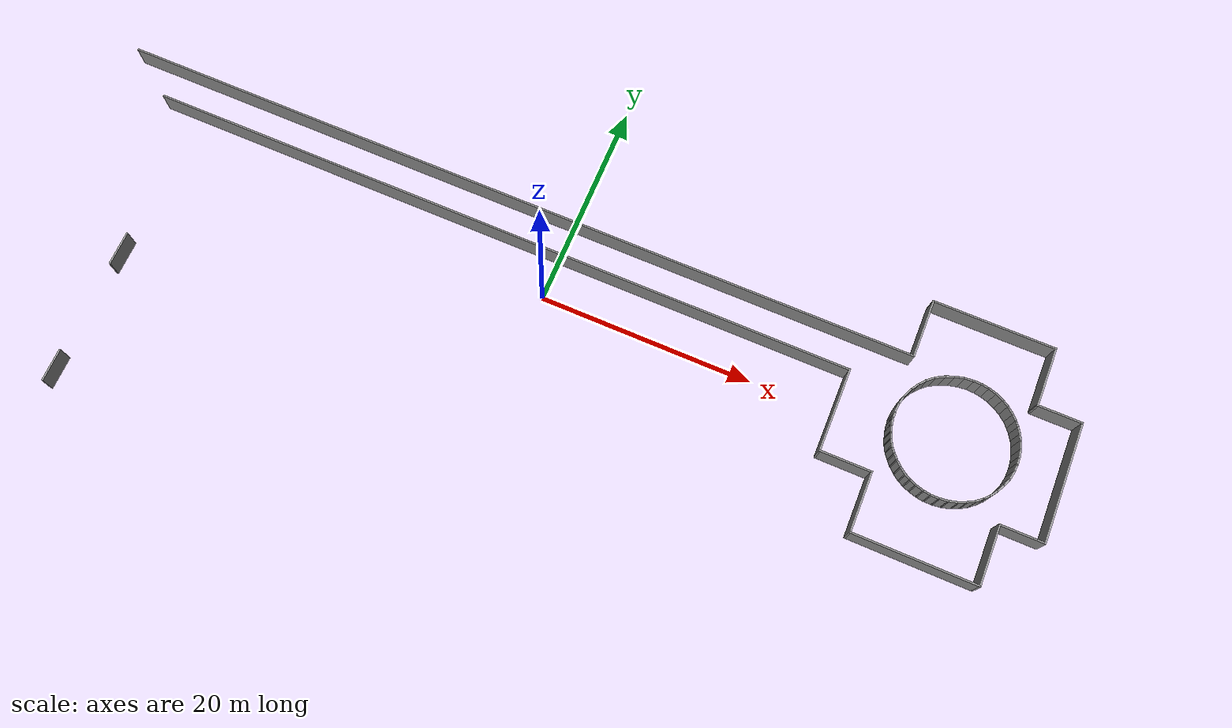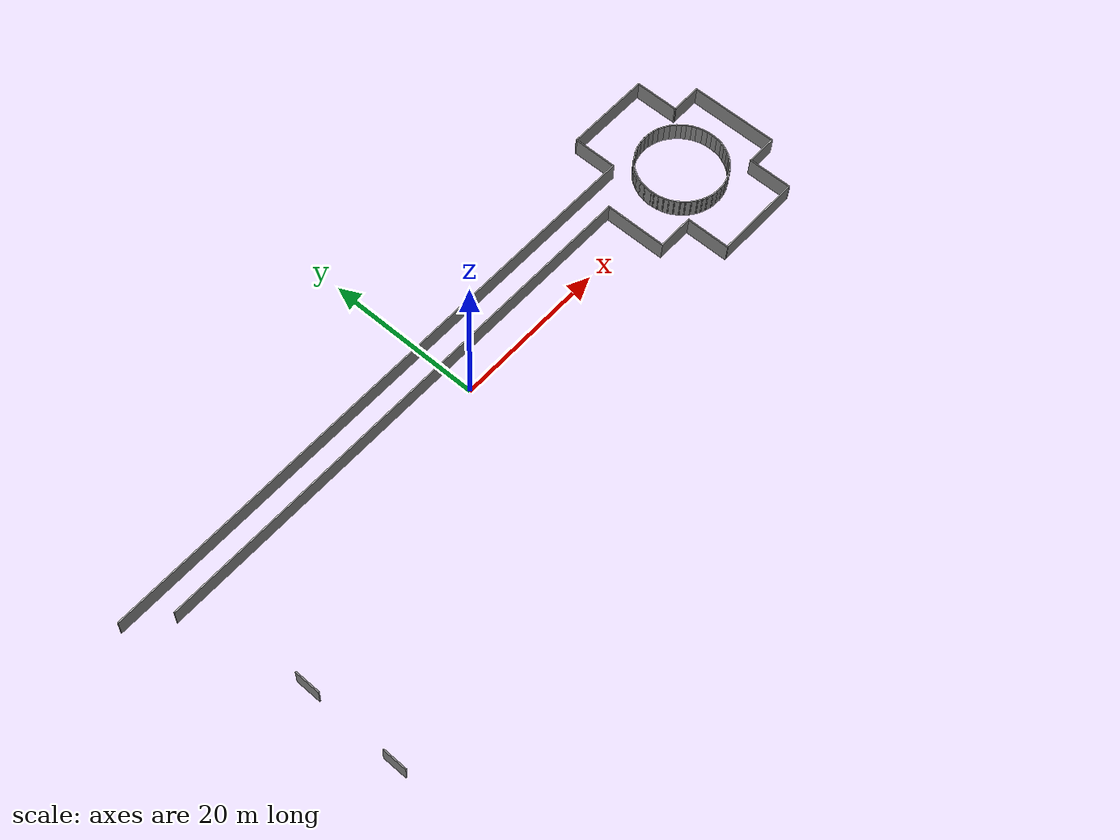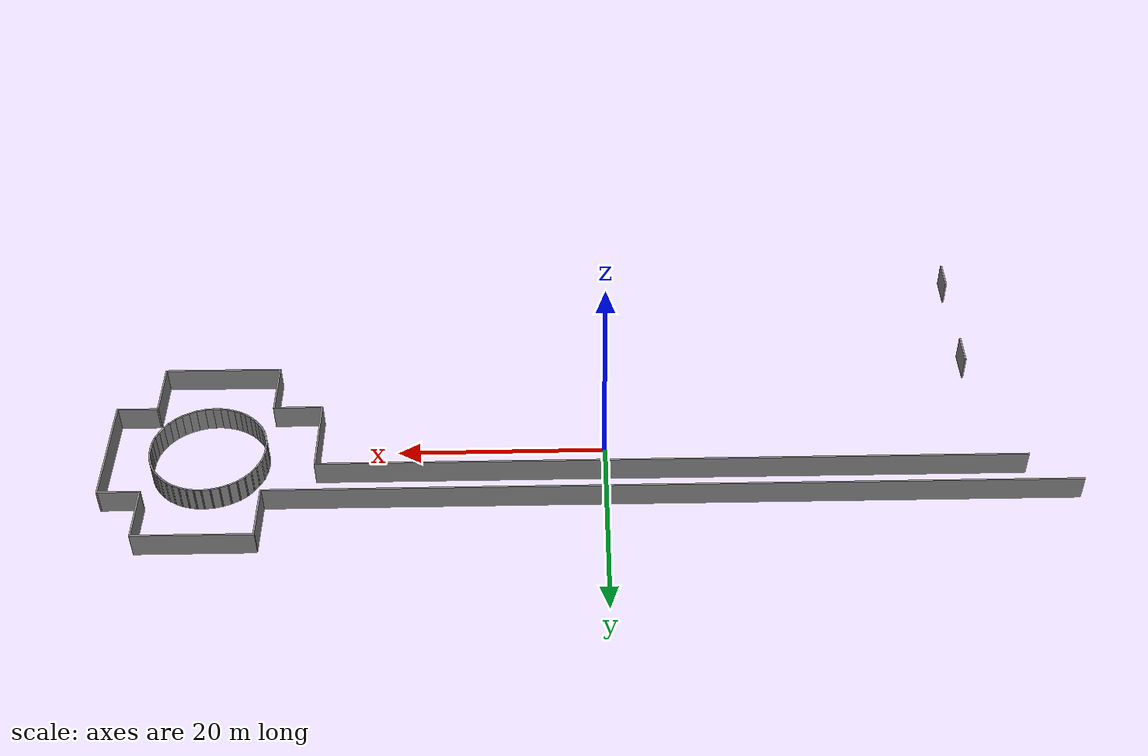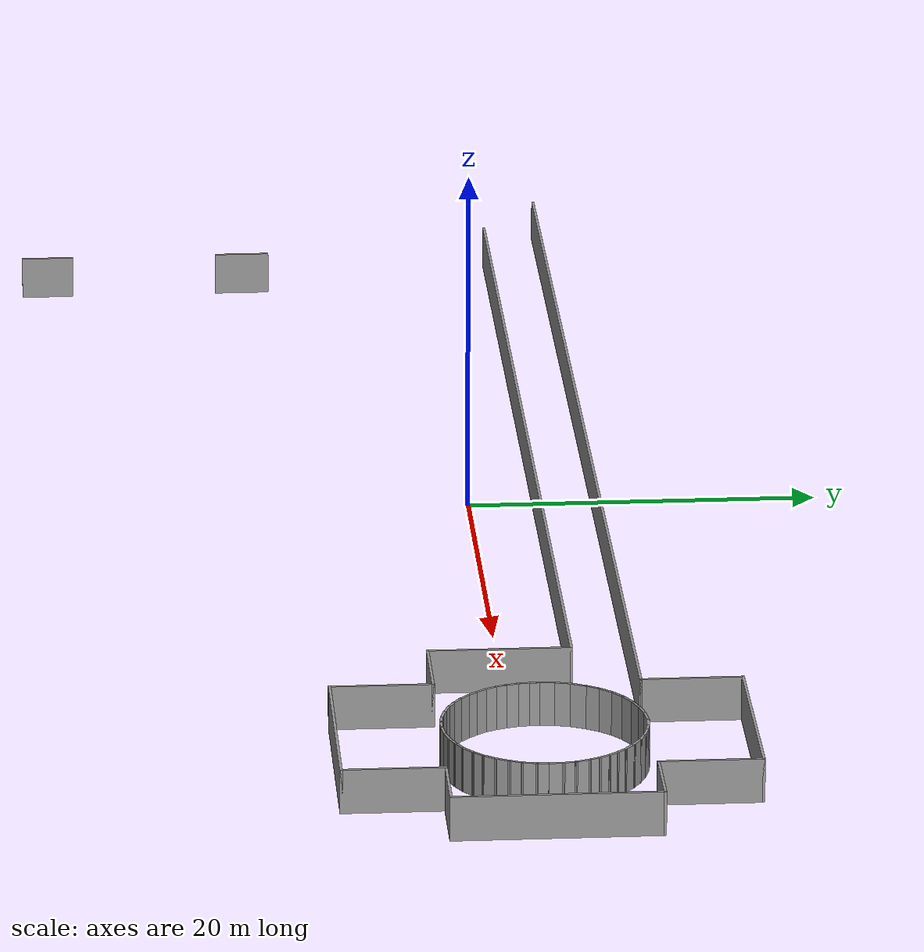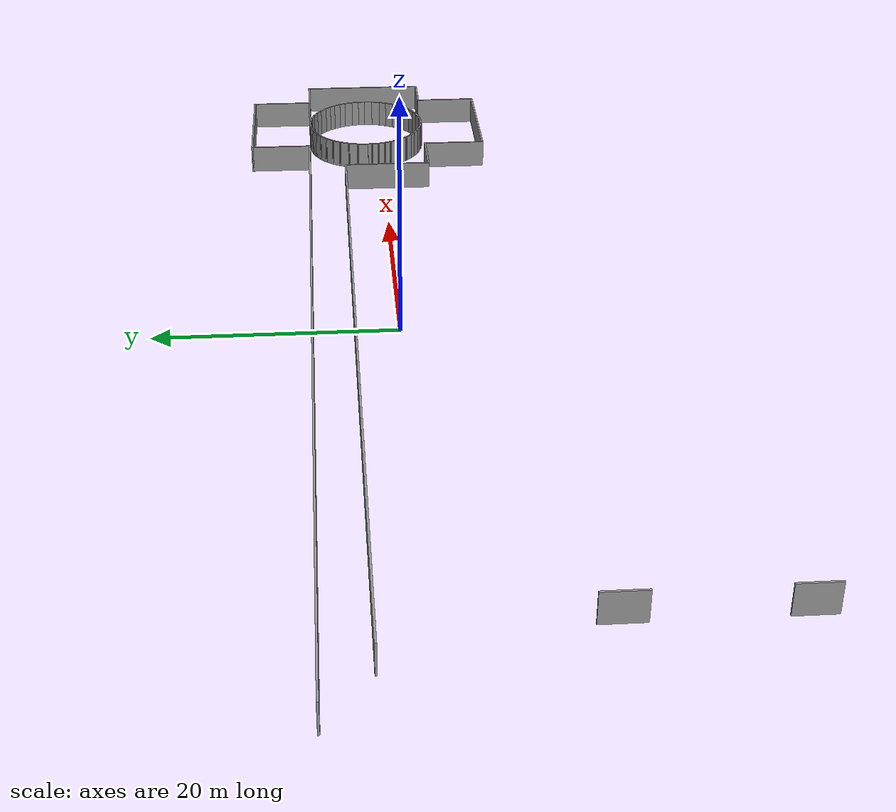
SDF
<sdf version="1.7">
 <model name="TD1_large">
  <pose>-31.5443 -9.14138 0 0 -0 0</pose>
  <link name="Wall_171">
   <collision name="Wall_171_Collision">
    <geometry><box><size>68.1 0.15 2.5</size></box></geometry>
    <pose>0 0 1.25 0 -0 0</pose>
   </collision>
   <visual name="Wall_171_Visual">
    <pose>0 0 1.25 0 -0 0</pose>
    <geometry><box><size>68.1 0.15 2.5</size></box></geometry>
    <material>
     <script><uri>file://media/materials/scripts/gazebo.material</uri><name>Gazebo/Grey</name></script>
     <ambient>1 1 1 1</ambient>
    </material>
    <meta><layer>0</layer></meta>
   </visual>
   <pose>25.1877 12.8583 0 0 -0 0</pose>
  </link>
  <link name="Wall_173">
   <collision name="Wall_173_Collision">
    <geometry><box><size>8 0.15 2.5</size></box></geometry>
    <pose>0 0 1.25 0 -0 0</pose>
   </collision>
   <visual name="Wall_173_Visual">
    <pose>0 0 1.25 0 -0 0</pose>
    <geometry><box><size>8 0.15 2.5</size></box></geometry>
    <material>
     <script><uri>file://media/materials/scripts/gazebo.material</uri><name>Gazebo/Grey</name></script>
     <ambient>1 1 1 1</ambient>
    </material>
    <meta><layer>0</layer></meta>
   </visual>
   <pose>59.1627 8.93327 0 0 -0 -1.5708</pose>
  </link>
  <link name="Wall_174">
   <collision name="Wall_174_Collision">
    <geometry><box><size>4.85 0.15 2.5</size></box></geometry>
    <pose>0 0 1.25 0 -0 0</pose>
   </collision>
   <visual name="Wall_174_Visual">
    <pose>0 0 1.25 0 -0 0</pose>
    <geometry><box><size>4.85 0.15 2.5</size></box></geometry>
    <material>
     <script><uri>file://media/materials/scripts/gazebo.material</uri><name>Gazebo/Grey</name></script>
     <ambient>1 1 1 1</ambient>
    </material>
    <meta><layer>0</layer></meta>
   </visual>
   <pose>61.5127 5.00827 0 0 -0 0</pose>
  </link>
  <link name="Wall_179">
   <collision name="Wall_179_Collision">
    <geometry><box><size>5.75 0.15 2.5</size></box></geometry>
    <pose>0 0 1.25 0 -0 0</pose>
   </collision>
   <visual name="Wall_179_Visual">
    <pose>0 0 1.25 0 -0 0</pose>
    <geometry><box><size>5.75 0.15 2.5</size></box></geometry>
    <material>
     <script><uri>file://media/materials/scripts/gazebo.material</uri><name>Gazebo/Grey</name></script>
     <ambient>1 1 1 1</ambient>
    </material>
    <meta><layer>0</layer></meta>
   </visual>
   <pose>63.8627 2.20827 0 0 -0 -1.5708</pose>
  </link>
  <link name="Wall_180">
   <collision name="Wall_180_Collision">
    <geometry><box><size>11.5 0.15 2.5</size></box></geometry>
    <pose>0 0 1.25 0 -0 0</pose>
   </collision>
   <visual name="Wall_180_Visual">
    <pose>0 0 1.25 0 -0 0</pose>
    <geometry><box><size>11.5 0.15 2.5</size></box></geometry>
    <material>
     <script><uri>file://media/materials/scripts/gazebo.material</uri><name>Gazebo/Grey</name></script>
     <ambient>1 1 1 1</ambient>
    </material>
    <meta><layer>0</layer></meta>
   </visual>
   <pose>69.5377 -0.591726 0 0 -0 0</pose>
  </link>
  <link name="Wall_181">
   <collision name="Wall_181_Collision">
    <geometry><box><size>5.7 0.15 2.5</size></box></geometry>
    <pose>0 0 1.25 0 -0 0</pose>
   </collision>
   <visual name="Wall_181_Visual">
    <pose>0 0 1.25 0 -0 0</pose>
    <geometry><box><size>5.7 0.15 2.5</size></box></geometry>
    <material>
     <script><uri>file://media/materials/scripts/gazebo.material</uri><name>Gazebo/Grey</name></script>
     <ambient>1 1 1 1</ambient>
    </material>
    <meta><layer>0</layer></meta>
   </visual>
   <pose>75.2127 2.18327 0 0 -0 1.5708</pose>
  </link>
  <link name="Wall_183">
   <collision name="Wall_183_Collision">
    <geometry><box><size>4.1 0.15 2.5</size></box></geometry>
    <pose>0 0 1.25 0 -0 0</pose>
   </collision>
   <visual name="Wall_183_Visual">
    <pose>0 0 1.25 0 -0 0</pose>
    <geometry><box><size>4.1 0.15 2.5</size></box></geometry>
    <material>
     <script><uri>file://media/materials/scripts/gazebo.material</uri><name>Gazebo/Grey</name></script>
     <ambient>1 1 1 1</ambient>
    </material>
    <meta><layer>0</layer></meta>
   </visual>
   <pose>77.1877 4.95827 0 0 -0 0</pose>
  </link>
  <link name="Wall_185">
   <collision name="Wall_185_Collision">
    <geometry><box><size>11.4 0.15 2.5</size></box></geometry>
    <pose>0 0 1.25 0 -0 0</pose>
   </collision>
   <visual name="Wall_185_Visual">
    <pose>0 0 1.25 0 -0 0</pose>
    <geometry><box><size>11.4 0.15 2.5</size></box></geometry>
    <material>
     <script><uri>file://media/materials/scripts/gazebo.material</uri><name>Gazebo/Grey</name></script>
     <ambient>1 1 1 1</ambient>
    </material>
    <meta><layer>0</layer></meta>
   </visual>
   <pose>79.1627 10.5833 0 0 -0 1.5708</pose>
  </link>
  <link name="Wall_188">
   <collision name="Wall_188_Collision">
    <geometry><box><size>4.15 0.15 2.5</size></box></geometry>
    <pose>0 0 1.25 0 -0 0</pose>
   </collision>
   <visual name="Wall_188_Visual">
    <pose>0 0 1.25 0 -0 0</pose>
    <geometry><box><size>4.15 0.15 2.5</size></box></geometry>
    <material>
     <script><uri>file://media/materials/scripts/gazebo.material</uri><name>Gazebo/Grey</name></script>
     <ambient>1 1 1 1</ambient>
    </material>
    <meta><layer>0</layer></meta>
   </visual>
   <pose>77.1627 16.2083 0 0 -0 3.14159</pose>
  </link>
  <link name="Wall_190">
   <collision name="Wall_190_Collision">
    <geometry><box><size>5.7367 0.15 2.5</size></box></geometry>
    <pose>0 0 1.25 0 -0 0</pose>
   </collision>
   <visual name="Wall_190_Visual">
    <pose>0 0 1.25 0 -0 0</pose>
    <geometry><box><size>5.7367 0.15 2.5</size></box></geometry>
    <material>
     <script><uri>file://media/materials/scripts/gazebo.material</uri><name>Gazebo/Grey</name></script>
     <ambient>1 1 1 1</ambient>
    </material>
    <meta><layer>0</layer></meta>
   </visual>
   <pose>75.1627 19.0016 0 0 -0 1.5708</pose>
  </link>
  <link name="Wall_192">
   <collision name="Wall_192_Collision">
    <geometry><box><size>11.4 0.15 2.5</size></box></geometry>
    <pose>0 0 1.25 0 -0 0</pose>
   </collision>
   <visual name="Wall_192_Visual">
    <pose>0 0 1.25 0 -0 0</pose>
    <geometry><box><size>11.4 0.15 2.5</size></box></geometry>
    <material>
     <script><uri>file://media/materials/scripts/gazebo.material</uri><name>Gazebo/Grey</name></script>
     <ambient>1 1 1 1</ambient>
    </material>
    <meta><layer>0</layer></meta>
   </visual>
   <pose>69.5377 21.795 0 0 -0 3.14159</pose>
  </link>
  <link name="Wall_195">
   <collision name="Wall_195_Collision">
    <geometry><box><size>5.7 0.15 2.5</size></box></geometry>
    <pose>0 0 1.25 0 -0 0</pose>
   </collision>
   <visual name="Wall_195_Visual">
    <pose>0 0 1.25 0 -0 0</pose>
    <geometry><box><size>5.7 0.15 2.5</size></box></geometry>
    <material>
     <script><uri>file://media/materials/scripts/gazebo.material</uri><name>Gazebo/Grey</name></script>
     <ambient>1 1 1 1</ambient>
    </material>
    <meta><layer>0</layer></meta>
   </visual>
   <pose>63.9127 19.02 0 0 -0 -1.5708</pose>
  </link>
  <link name="Wall_197">
   <collision name="Wall_197_Collision">
    <geometry><box><size>77.45 0.15 2.5</size></box></geometry>
    <pose>0 0 1.25 0 -0 0</pose>
   </collision>
   <visual name="Wall_197_Visual">
    <pose>0 0 1.25 0 -0 0</pose>
    <geometry><box><size>77.45 0.15 2.5</size></box></geometry>
    <material>
     <script><uri>file://media/materials/scripts/gazebo.material</uri><name>Gazebo/Grey</name></script>
     <ambient>1 1 1 1</ambient>
    </material>
    <meta><layer>0</layer></meta>
   </visual>
   <pose>25.2627 16.245 0 0 -0 3.14159</pose>
  </link>
  <link name="Wall_23">
   <collision name="Wall_23_Collision">
    <geometry><box><size>3.1 0.15 2.5</size></box></geometry>
    <pose>0 0 1.25 0 -0 0</pose>
   </collision>
   <visual name="Wall_23_Visual">
    <pose>0 0 1.25 0 -0 0</pose>
    <geometry><box><size>3.1 0.15 2.5</size></box></geometry>
    <material>
     <script><uri>file://media/materials/scripts/gazebo.material</uri><name>Gazebo/Grey</name></script>
     <ambient>1 1 1 1</ambient>
    </material>
    <meta><layer>0</layer></meta>
   </visual>
   <pose>-5.11964 -14.2537 0 0 -0 1.5708</pose>
  </link>
  <link name="Wall_280">
   <collision name="Wall_280_Collision">
    <geometry><box><size>1.08565 0.15 2.5</size></box></geometry>
    <pose>0 0 1.25 0 -0 0</pose>
   </collision>
   <visual name="Wall_280_Visual">
    <pose>0 0 1.25 0 -0 0</pose>
    <geometry><box><size>1.08565 0.15 2.5</size></box></geometry>
    <material>
     <script><uri>file://media/materials/scripts/gazebo.material</uri><name>Gazebo/Grey</name></script>
     <ambient>1 1 1 1</ambient>
    </material>
    <meta><layer>0</layer></meta>
   </visual>
   <pose>64.0308 11.105 0 0 -0 1.47113</pose>
  </link>
  <link name="Wall_281">
   <collision name="Wall_281_Collision">
    <geometry><box><size>1.01133 0.15 2.5</size></box></geometry>
    <pose>0 0 1.25 0 -0 0</pose>
   </collision>
   <visual name="Wall_281_Visual">
    <pose>0 0 1.25 0 -0 0</pose>
    <geometry><box><size>1.01133 0.15 2.5</size></box></geometry>
    <material>
     <script><uri>file://media/materials/scripts/gazebo.material</uri><name>Gazebo/Grey</name></script>
     <ambient>1 1 1 1</ambient>
    </material>
    <meta><layer>0</layer></meta>
   </visual>
   <pose>64.1771 11.9894 0 0 -0 1.33705</pose>
  </link>
  <link name="Wall_282">
   <collision name="Wall_282_Collision">
    <geometry><box><size>1.08451 0.15 2.5</size></box></geometry>
    <pose>0 0 1.25 0 -0 0</pose>
   </collision>
   <visual name="Wall_282_Visual">
    <pose>0 0 1.25 0 -0 0</pose>
    <geometry><box><size>1.08451 0.15 2.5</size></box></geometry>
    <material>
     <script><uri>file://media/materials/scripts/gazebo.material</uri><name>Gazebo/Grey</name></script>
     <ambient>1 1 1 1</ambient>
    </material>
    <meta><layer>0</layer></meta>
   </visual>
   <pose>64.4697 12.834 0 0 -0 1.14535</pose>
  </link>
  <link name="Wall_283">
   <collision name="Wall_283_Collision">
    <geometry><box><size>0.943783 0.15 2.5</size></box></geometry>
    <pose>0 0 1.25 0 -0 0</pose>
   </collision>
   <visual name="Wall_283_Visual">
    <pose>0 0 1.25 0 -0 0</pose>
    <geometry><box><size>0.943783 0.15 2.5</size></box></geometry>
    <material>
     <script><uri>file://media/materials/scripts/gazebo.material</uri><name>Gazebo/Grey</name></script>
     <ambient>1 1 1 1</ambient>
    </material>
    <meta><layer>0</layer></meta>
   </visual>
   <pose>64.8687 13.5987 0 0 -0 1.02463</pose>
  </link>
  <link name="Wall_284">
   <collision name="Wall_284_Collision">
    <geometry><box><size>0.970844 0.15 2.5</size></box></geometry>
    <pose>0 0 1.25 0 -0 0</pose>
   </collision>
   <visual name="Wall_284_Visual">
    <pose>0 0 1.25 0 -0 0</pose>
    <geometry><box><size>0.970844 0.15 2.5</size></box></geometry>
    <material>
     <script><uri>file://media/materials/scripts/gazebo.material</uri><name>Gazebo/Grey</name></script>
     <ambient>1 1 1 1</ambient>
    </material>
    <meta><layer>0</layer></meta>
   </visual>
   <pose>65.3409 14.2504 0 0 -0 0.865685</pose>
  </link>
  <link name="Wall_285">
   <collision name="Wall_285_Collision">
    <geometry><box><size>0.981017 0.15 2.5</size></box></geometry>
    <pose>0 0 1.25 0 -0 0</pose>
   </collision>
   <visual name="Wall_285_Visual">
    <pose>0 0 1.25 0 -0 0</pose>
    <geometry><box><size>0.981017 0.15 2.5</size></box></geometry>
    <material>
     <script><uri>file://media/materials/scripts/gazebo.material</uri><name>Gazebo/Grey</name></script>
     <ambient>1 1 1 1</ambient>
    </material>
    <meta><layer>0</layer></meta>
   </visual>
   <pose>65.9261 14.829 0 0 -0 0.694738</pose>
  </link>
  <link name="Wall_286">
   <collision name="Wall_286_Collision">
    <geometry><box><size>1.02599 0.15 2.5</size></box></geometry>
    <pose>0 0 1.25 0 -0 0</pose>
   </collision>
   <visual name="Wall_286_Visual">
    <pose>0 0 1.25 0 -0 0</pose>
    <geometry><box><size>1.02599 0.15 2.5</size></box></geometry>
    <material>
     <script><uri>file://media/materials/scripts/gazebo.material</uri><name>Gazebo/Grey</name></script>
     <ambient>1 1 1 1</ambient>
    </material>
    <meta><layer>0</layer></meta>
   </visual>
   <pose>66.6243 15.3144 0 0 -0 0.524796</pose>
  </link>
  <link name="Wall_287">
   <collision name="Wall_287_Collision">
    <geometry><box><size>0.997144 0.15 2.5</size></box></geometry>
    <pose>0 0 1.25 0 -0 0</pose>
   </collision>
   <visual name="Wall_287_Visual">
    <pose>0 0 1.25 0 -0 0</pose>
    <geometry><box><size>0.997144 0.15 2.5</size></box></geometry>
    <material>
     <script><uri>file://media/materials/scripts/gazebo.material</uri><name>Gazebo/Grey</name></script>
     <ambient>1 1 1 1</ambient>
    </material>
    <meta><layer>0</layer></meta>
   </visual>
   <pose>67.3957 15.6935 0 0 -0 0.386337</pose>
  </link>
  <link name="Wall_288">
   <collision name="Wall_288_Collision">
    <geometry><box><size>0.998396 0.15 2.5</size></box></geometry>
    <pose>0 0 1.25 0 -0 0</pose>
   </collision>
   <visual name="Wall_288_Visual">
    <pose>0 0 1.25 0 -0 0</pose>
    <geometry><box><size>0.998396 0.15 2.5</size></box></geometry>
    <material>
     <script><uri>file://media/materials/scripts/gazebo.material</uri><name>Gazebo/Grey</name></script>
     <ambient>1 1 1 1</ambient>
    </material>
    <meta><layer>0</layer></meta>
   </visual>
   <pose>68.2004 15.9529 0 0 -0 0.237374</pose>
  </link>
  <link name="Wall_289">
   <collision name="Wall_289_Collision">
    <geometry><box><size>0.993063 0.15 2.5</size></box></geometry>
    <pose>0 0 1.25 0 -0 0</pose>
   </collision>
   <visual name="Wall_289_Visual">
    <pose>0 0 1.25 0 -0 0</pose>
    <geometry><box><size>0.993063 0.15 2.5</size></box></geometry>
    <material>
     <script><uri>file://media/materials/scripts/gazebo.material</uri><name>Gazebo/Grey</name></script>
     <ambient>1 1 1 1</ambient>
    </material>
    <meta><layer>0</layer></meta>
   </visual>
   <pose>69.0316 16.0992 0 0 -0 0.110657</pose>
  </link>
  <link name="Wall_290">
   <collision name="Wall_290_Collision">
    <geometry><box><size>0.841733 0.15 2.5</size></box></geometry>
    <pose>0 0 1.25 0 -0 0</pose>
   </collision>
   <visual name="Wall_290_Visual">
    <pose>0 0 1.25 0 -0 0</pose>
    <geometry><box><size>0.841733 0.15 2.5</size></box></geometry>
    <material>
     <script><uri>file://media/materials/scripts/gazebo.material</uri><name>Gazebo/Grey</name></script>
     <ambient>1 1 1 1</ambient>
    </material>
    <meta><layer>0</layer></meta>
   </visual>
   <pose>69.7964 16.1324 0 0 -0 -0.038443</pose>
  </link>
  <link name="Wall_291">
   <collision name="Wall_291_Collision">
    <geometry><box><size>0.864996 0.15 2.5</size></box></geometry>
    <pose>0 0 1.25 0 -0 0</pose>
   </collision>
   <visual name="Wall_291_Visual">
    <pose>0 0 1.25 0 -0 0</pose>
    <geometry><box><size>0.864996 0.15 2.5</size></box></geometry>
    <material>
     <script><uri>file://media/materials/scripts/gazebo.material</uri><name>Gazebo/Grey</name></script>
     <ambient>1 1 1 1</ambient>
    </material>
    <meta><layer>0</layer></meta>
   </visual>
   <pose>70.4946 16.0593 0 0 -0 -0.168207</pose>
  </link>
  <link name="Wall_292">
   <collision name="Wall_292_Collision">
    <geometry><box><size>0.886326 0.15 2.5</size></box></geometry>
    <pose>0 0 1.25 0 -0 0</pose>
   </collision>
   <visual name="Wall_292_Visual">
    <pose>0 0 1.25 0 -0 0</pose>
    <geometry><box><size>0.886326 0.15 2.5</size></box></geometry>
    <material>
     <script><uri>file://media/materials/scripts/gazebo.material</uri><name>Gazebo/Grey</name></script>
     <ambient>1 1 1 1</ambient>
    </material>
    <meta><layer>0</layer></meta>
   </visual>
   <pose>71.1995 15.893 0 0 -0 -0.293187</pose>
  </link>
  <link name="Wall_293">
   <collision name="Wall_293_Collision">
    <geometry><box><size>0.899659 0.15 2.5</size></box></geometry>
    <pose>0 0 1.25 0 -0 0</pose>
   </collision>
   <visual name="Wall_293_Visual">
    <pose>0 0 1.25 0 -0 0</pose>
    <geometry><box><size>0.899659 0.15 2.5</size></box></geometry>
    <material>
     <script><uri>file://media/materials/scripts/gazebo.material</uri><name>Gazebo/Grey</name></script>
     <ambient>1 1 1 1</ambient>
    </material>
    <meta><layer>0</layer></meta>
   </visual>
   <pose>71.8912 15.627 0 0 -0 -0.439843</pose>
  </link>
  <link name="Wall_294">
   <collision name="Wall_294_Collision">
    <geometry><box><size>0.862021 0.15 2.5</size></box></geometry>
    <pose>0 0 1.25 0 -0 0</pose>
   </collision>
   <visual name="Wall_294_Visual">
    <pose>0 0 1.25 0 -0 0</pose>
    <geometry><box><size>0.862021 0.15 2.5</size></box></geometry>
    <material>
     <script><uri>file://media/materials/scripts/gazebo.material</uri><name>Gazebo/Grey</name></script>
     <ambient>1 1 1 1</ambient>
    </material>
    <meta><layer>0</layer></meta>
   </visual>
   <pose>72.5296 15.2745 0 0 -0 -0.57246</pose>
  </link>
  <link name="Wall_295">
   <collision name="Wall_295_Collision">
    <geometry><box><size>0.933352 0.15 2.5</size></box></geometry>
    <pose>0 0 1.25 0 -0 0</pose>
   </collision>
   <visual name="Wall_295_Visual">
    <pose>0 0 1.25 0 -0 0</pose>
    <geometry><box><size>0.933352 0.15 2.5</size></box></geometry>
    <material>
     <script><uri>file://media/materials/scripts/gazebo.material</uri><name>Gazebo/Grey</name></script>
     <ambient>1 1 1 1</ambient>
    </material>
    <meta><layer>0</layer></meta>
   </visual>
   <pose>73.1281 14.829 0 0 -0 -0.70126</pose>
  </link>
  <link name="Wall_296">
   <collision name="Wall_296_Collision">
    <geometry><box><size>0.753068 0.15 2.5</size></box></geometry>
    <pose>0 0 1.25 0 -0 0</pose>
   </collision>
   <visual name="Wall_296_Visual">
    <pose>0 0 1.25 0 -0 0</pose>
    <geometry><box><size>0.753068 0.15 2.5</size></box></geometry>
    <material>
     <script><uri>file://media/materials/scripts/gazebo.material</uri><name>Gazebo/Grey</name></script>
     <ambient>1 1 1 1</ambient>
    </material>
    <meta><layer>0</layer></meta>
   </visual>
   <pose>73.6268 14.3502 0 0 -0 -0.847817</pose>
  </link>
  <link name="Wall_297">
   <collision name="Wall_297_Collision">
    <geometry><box><size>0.711289 0.15 2.5</size></box></geometry>
    <pose>0 0 1.25 0 -0 0</pose>
   </collision>
   <visual name="Wall_297_Visual">
    <pose>0 0 1.25 0 -0 0</pose>
    <geometry><box><size>0.711289 0.15 2.5</size></box></geometry>
    <material>
     <script><uri>file://media/materials/scripts/gazebo.material</uri><name>Gazebo/Grey</name></script>
     <ambient>1 1 1 1</ambient>
    </material>
    <meta><layer>0</layer></meta>
   </visual>
   <pose>73.9926 13.898 0 0 -0 -0.936774</pose>
  </link>
  <link name="Wall_298">
   <collision name="Wall_298_Collision">
    <geometry><box><size>0.78186 0.15 2.5</size></box></geometry>
    <pose>0 0 1.25 0 -0 0</pose>
   </collision>
   <visual name="Wall_298_Visual">
    <pose>0 0 1.25 0 -0 0</pose>
    <geometry><box><size>0.78186 0.15 2.5</size></box></geometry>
    <material>
     <script><uri>file://media/materials/scripts/gazebo.material</uri><name>Gazebo/Grey</name></script>
     <ambient>1 1 1 1</ambient>
    </material>
    <meta><layer>0</layer></meta>
   </visual>
   <pose>74.3184 13.3992 0 0 -0 -1.04121</pose>
  </link>
  <link name="Wall_299">
   <collision name="Wall_299_Collision">
    <geometry><box><size>0.728057 0.15 2.5</size></box></geometry>
    <pose>0 0 1.25 0 -0 0</pose>
   </collision>
   <visual name="Wall_299_Visual">
    <pose>0 0 1.25 0 -0 0</pose>
    <geometry><box><size>0.728057 0.15 2.5</size></box></geometry>
    <material>
     <script><uri>file://media/materials/scripts/gazebo.material</uri><name>Gazebo/Grey</name></script>
     <ambient>1 1 1 1</ambient>
    </material>
    <meta><layer>0</layer></meta>
   </visual>
   <pose>74.5911 12.8606 0 0 -0 -1.16893</pose>
  </link>
  <link name="Wall_300">
   <collision name="Wall_300_Collision">
    <geometry><box><size>0.932335 0.15 2.5</size></box></geometry>
    <pose>0 0 1.25 0 -0 0</pose>
   </collision>
   <visual name="Wall_300_Visual">
    <pose>0 0 1.25 0 -0 0</pose>
    <geometry><box><size>0.932335 0.15 2.5</size></box></geometry>
    <material>
     <script><uri>file://media/materials/scripts/gazebo.material</uri><name>Gazebo/Grey</name></script>
     <ambient>1 1 1 1</ambient>
    </material>
    <meta><layer>0</layer></meta>
   </visual>
   <pose>74.8238 12.2222 0 0 -0 -1.2598</pose>
  </link>
  <link name="Wall_301">
   <collision name="Wall_301_Collision">
    <geometry><box><size>0.82149 0.15 2.5</size></box></geometry>
    <pose>0 0 1.25 0 -0 0</pose>
   </collision>
   <visual name="Wall_301_Visual">
    <pose>0 0 1.25 0 -0 0</pose>
    <geometry><box><size>0.82149 0.15 2.5</size></box></geometry>
    <material>
     <script><uri>file://media/materials/scripts/gazebo.material</uri><name>Gazebo/Grey</name></script>
     <ambient>1 1 1 1</ambient>
    </material>
    <meta><layer>0</layer></meta>
   </visual>
   <pose>74.9901 11.5173 0 0 -0 -1.4317</pose>
  </link>
  <link name="Wall_302">
   <collision name="Wall_302_Collision">
    <geometry><box><size>0.868698 0.15 2.5</size></box></geometry>
    <pose>0 0 1.25 0 -0 0</pose>
   </collision>
   <visual name="Wall_302_Visual">
    <pose>0 0 1.25 0 -0 0</pose>
    <geometry><box><size>0.868698 0.15 2.5</size></box></geometry>
    <material>
     <script><uri>file://media/materials/scripts/gazebo.material</uri><name>Gazebo/Grey</name></script>
     <ambient>1 1 1 1</ambient>
    </material>
    <meta><layer>0</layer></meta>
   </visual>
   <pose>75.0499 10.8257 0 0 -0 -1.53378</pose>
  </link>
  <link name="Wall_304">
   <collision name="Wall_304_Collision">
    <geometry><box><size>0.842755 0.15 2.5</size></box></geometry>
    <pose>0 0 1.25 0 -0 0</pose>
   </collision>
   <visual name="Wall_304_Visual">
    <pose>0 0 1.25 0 -0 0</pose>
    <geometry><box><size>0.842755 0.15 2.5</size></box></geometry>
    <material>
     <script><uri>file://media/materials/scripts/gazebo.material</uri><name>Gazebo/Grey</name></script>
     <ambient>1 1 1 1</ambient>
    </material>
    <meta><layer>0</layer></meta>
   </visual>
   <pose>75.03 10.1341 0 0 -0 -1.62843</pose>
  </link>
  <link name="Wall_305">
   <collision name="Wall_305_Collision">
    <geometry><box><size>0.937743 0.15 2.5</size></box></geometry>
    <pose>0 0 1.25 0 -0 0</pose>
   </collision>
   <visual name="Wall_305_Visual">
    <pose>0 0 1.25 0 -0 0</pose>
    <geometry><box><size>0.937743 0.15 2.5</size></box></geometry>
    <material>
     <script><uri>file://media/materials/scripts/gazebo.material</uri><name>Gazebo/Grey</name></script>
     <ambient>1 1 1 1</ambient>
    </material>
    <meta><layer>0</layer></meta>
   </visual>
   <pose>74.9302 9.40255 0 0 -0 -1.77481</pose>
  </link>
  <link name="Wall_306">
   <collision name="Wall_306_Collision">
    <geometry><box><size>0.853901 0.15 2.5</size></box></geometry>
    <pose>0 0 1.25 0 -0 0</pose>
   </collision>
   <visual name="Wall_306_Visual">
    <pose>0 0 1.25 0 -0 0</pose>
    <geometry><box><size>0.853901 0.15 2.5</size></box></geometry>
    <material>
     <script><uri>file://media/materials/scripts/gazebo.material</uri><name>Gazebo/Grey</name></script>
     <ambient>1 1 1 1</ambient>
    </material>
    <meta><layer>0</layer></meta>
   </visual>
   <pose>74.7174 8.691 0 0 -0 -1.95832</pose>
  </link>
  <link name="Wall_307">
   <collision name="Wall_307_Collision">
    <geometry><box><size>0.911365 0.15 2.5</size></box></geometry>
    <pose>0 0 1.25 0 -0 0</pose>
   </collision>
   <visual name="Wall_307_Visual">
    <pose>0 0 1.25 0 -0 0</pose>
    <geometry><box><size>0.911365 0.15 2.5</size></box></geometry>
    <material>
     <script><uri>file://media/materials/scripts/gazebo.material</uri><name>Gazebo/Grey</name></script>
     <ambient>1 1 1 1</ambient>
    </material>
    <meta><layer>0</layer></meta>
   </visual>
   <pose>74.4115 8.02599 0 0 -0 -2.04226</pose>
  </link>
  <link name="Wall_308">
   <collision name="Wall_308_Collision">
    <geometry><box><size>0.943226 0.15 2.5</size></box></geometry>
    <pose>0 0 1.25 0 -0 0</pose>
   </collision>
   <visual name="Wall_308_Visual">
    <pose>0 0 1.25 0 -0 0</pose>
    <geometry><box><size>0.943226 0.15 2.5</size></box></geometry>
    <material>
     <script><uri>file://media/materials/scripts/gazebo.material</uri><name>Gazebo/Grey</name></script>
     <ambient>1 1 1 1</ambient>
    </material>
    <meta><layer>0</layer></meta>
   </visual>
   <pose>74.0125 7.36099 0 0 -0 -2.1774</pose>
  </link>
  <link name="Wall_309">
   <collision name="Wall_309_Collision">
    <geometry><box><size>0.8366 0.15 2.5</size></box></geometry>
    <pose>0 0 1.25 0 -0 0</pose>
   </collision>
   <visual name="Wall_309_Visual">
    <pose>0 0 1.25 0 -0 0</pose>
    <geometry><box><size>0.8366 0.15 2.5</size></box></geometry>
    <material>
     <script><uri>file://media/materials/scripts/gazebo.material</uri><name>Gazebo/Grey</name></script>
     <ambient>1 1 1 1</ambient>
    </material>
    <meta><layer>0</layer></meta>
   </visual>
   <pose>73.547 6.78908 0 0 -0 -2.3425</pose>
  </link>
  <link name="Wall_310">
   <collision name="Wall_310_Collision">
    <geometry><box><size>0.914611 0.15 2.5</size></box></geometry>
    <pose>0 0 1.25 0 -0 0</pose>
   </collision>
   <visual name="Wall_310_Visual">
    <pose>0 0 1.25 0 -0 0</pose>
    <geometry><box><size>0.914611 0.15 2.5</size></box></geometry>
    <material>
     <script><uri>file://media/materials/scripts/gazebo.material</uri><name>Gazebo/Grey</name></script>
     <ambient>1 1 1 1</ambient>
    </material>
    <meta><layer>0</layer></meta>
   </visual>
   <pose>73.015 6.29698 0 0 -0 -2.4424</pose>
  </link>
  <link name="Wall_311">
   <collision name="Wall_311_Collision">
    <geometry><box><size>0.894093 0.15 2.5</size></box></geometry>
    <pose>0 0 1.25 0 -0 0</pose>
   </collision>
   <visual name="Wall_311_Visual">
    <pose>0 0 1.25 0 -0 0</pose>
    <geometry><box><size>0.894093 0.15 2.5</size></box></geometry>
    <material>
     <script><uri>file://media/materials/scripts/gazebo.material</uri><name>Gazebo/Grey</name></script>
     <ambient>1 1 1 1</ambient>
    </material>
    <meta><layer>0</layer></meta>
   </visual>
   <pose>72.3966 5.87137 0 0 -0 -2.63797</pose>
  </link>
  <link name="Wall_312">
   <collision name="Wall_312_Collision">
    <geometry><box><size>0.881989 0.15 2.5</size></box></geometry>
    <pose>0 0 1.25 0 -0 0</pose>
   </collision>
   <visual name="Wall_312_Visual">
    <pose>0 0 1.25 0 -0 0</pose>
    <geometry><box><size>0.881989 0.15 2.5</size></box></geometry>
    <material>
     <script><uri>file://media/materials/scripts/gazebo.material</uri><name>Gazebo/Grey</name></script>
     <ambient>1 1 1 1</ambient>
    </material>
    <meta><layer>0</layer></meta>
   </visual>
   <pose>71.7382 5.53887 0 0 -0 -2.71045</pose>
  </link>
  <link name="Wall_313">
   <collision name="Wall_313_Collision">
    <geometry><box><size>0.98875 0.15 2.5</size></box></geometry>
    <pose>0 0 1.25 0 -0 0</pose>
   </collision>
   <visual name="Wall_313_Visual">
    <pose>0 0 1.25 0 -0 0</pose>
    <geometry><box><size>0.98875 0.15 2.5</size></box></geometry>
    <material>
     <script><uri>file://media/materials/scripts/gazebo.material</uri><name>Gazebo/Grey</name></script>
     <ambient>1 1 1 1</ambient>
    </material>
    <meta><layer>0</layer></meta>
   </visual>
   <pose>71 5.27952 0 0 -0 -2.88508</pose>
  </link>
  <link name="Wall_314">
   <collision name="Wall_314_Collision">
    <geometry><box><size>0.927004 0.15 2.5</size></box></geometry>
    <pose>0 0 1.25 0 -0 0</pose>
   </collision>
   <visual name="Wall_314_Visual">
    <pose>0 0 1.25 0 -0 0</pose>
    <geometry><box><size>0.927004 0.15 2.5</size></box></geometry>
    <material>
     <script><uri>file://media/materials/scripts/gazebo.material</uri><name>Gazebo/Grey</name></script>
     <ambient>1 1 1 1</ambient>
    </material>
    <meta><layer>0</layer></meta>
   </visual>
   <pose>70.2087 5.12657 0 0 -0 -3.02148</pose>
  </link>
  <link name="Wall_315">
   <collision name="Wall_315_Collision">
    <geometry><box><size>0.894806 0.15 2.5</size></box></geometry>
    <pose>0 0 1.25 0 -0 0</pose>
   </collision>
   <visual name="Wall_315_Visual">
    <pose>0 0 1.25 0 -0 0</pose>
    <geometry><box><size>0.894806 0.15 2.5</size></box></geometry>
    <material>
     <script><uri>file://media/materials/scripts/gazebo.material</uri><name>Gazebo/Grey</name></script>
     <ambient>1 1 1 1</ambient>
    </material>
    <meta><layer>0</layer></meta>
   </visual>
   <pose>69.4506 5.08002 0 0 -0 3.14159</pose>
  </link>
  <link name="Wall_316">
   <collision name="Wall_316_Collision">
    <geometry><box><size>0.849742 0.15 2.5</size></box></geometry>
    <pose>0 0 1.25 0 -0 0</pose>
   </collision>
   <visual name="Wall_316_Visual">
    <pose>0 0 1.25 0 -0 0</pose>
    <geometry><box><size>0.849742 0.15 2.5</size></box></geometry>
    <material>
     <script><uri>file://media/materials/scripts/gazebo.material</uri><name>Gazebo/Grey</name></script>
     <ambient>1 1 1 1</ambient>
    </material>
    <meta><layer>0</layer></meta>
   </visual>
   <pose>68.7324 5.13322 0 0 -0 2.98894</pose>
  </link>
  <link name="Wall_317">
   <collision name="Wall_317_Collision">
    <geometry><box><size>0.91183 0.15 2.5</size></box></geometry>
    <pose>0 0 1.25 0 -0 0</pose>
   </collision>
   <visual name="Wall_317_Visual">
    <pose>0 0 1.25 0 -0 0</pose>
    <geometry><box><size>0.91183 0.15 2.5</size></box></geometry>
    <material>
     <script><uri>file://media/materials/scripts/gazebo.material</uri><name>Gazebo/Grey</name></script>
     <ambient>1 1 1 1</ambient>
    </material>
    <meta><layer>0</layer></meta>
   </visual>
   <pose>68.0208 5.29282 0 0 -0 2.8585</pose>
  </link>
  <link name="Wall_318">
   <collision name="Wall_318_Collision">
    <geometry><box><size>0.78228 0.15 2.5</size></box></geometry>
    <pose>0 0 1.25 0 -0 0</pose>
   </collision>
   <visual name="Wall_318_Visual">
    <pose>0 0 1.25 0 -0 0</pose>
    <geometry><box><size>0.78228 0.15 2.5</size></box></geometry>
    <material>
     <script><uri>file://media/materials/scripts/gazebo.material</uri><name>Gazebo/Grey</name></script>
     <ambient>1 1 1 1</ambient>
    </material>
    <meta><layer>0</layer></meta>
   </visual>
   <pose>67.3625 5.51892 0 0 -0 2.75327</pose>
  </link>
  <link name="Wall_319">
   <collision name="Wall_319_Collision">
    <geometry><box><size>0.727445 0.15 2.5</size></box></geometry>
    <pose>0 0 1.25 0 -0 0</pose>
   </collision>
   <visual name="Wall_319_Visual">
    <pose>0 0 1.25 0 -0 0</pose>
    <geometry><box><size>0.727445 0.15 2.5</size></box></geometry>
    <material>
     <script><uri>file://media/materials/scripts/gazebo.material</uri><name>Gazebo/Grey</name></script>
     <ambient>1 1 1 1</ambient>
    </material>
    <meta><layer>0</layer></meta>
   </visual>
   <pose>66.8172 5.77827 0 0 -0 2.63673</pose>
  </link>
  <link name="Wall_320">
   <collision name="Wall_320_Collision">
    <geometry><box><size>0.86289 0.15 2.5</size></box></geometry>
    <pose>0 0 1.25 0 -0 0</pose>
   </collision>
   <visual name="Wall_320_Visual">
    <pose>0 0 1.25 0 -0 0</pose>
    <geometry><box><size>0.86289 0.15 2.5</size></box></geometry>
    <material>
     <script><uri>file://media/materials/scripts/gazebo.material</uri><name>Gazebo/Grey</name></script>
     <ambient>1 1 1 1</ambient>
    </material>
    <meta><layer>0</layer></meta>
   </visual>
   <pose>66.2785 6.13073 0 0 -0 2.50182</pose>
  </link>
  <link name="Wall_321">
   <collision name="Wall_321_Collision">
    <geometry><box><size>0.827392 0.15 2.5</size></box></geometry>
    <pose>0 0 1.25 0 -0 0</pose>
   </collision>
   <visual name="Wall_321_Visual">
    <pose>0 0 1.25 0 -0 0</pose>
    <geometry><box><size>0.827392 0.15 2.5</size></box></geometry>
    <material>
     <script><uri>file://media/materials/scripts/gazebo.material</uri><name>Gazebo/Grey</name></script>
     <ambient>1 1 1 1</ambient>
    </material>
    <meta><layer>0</layer></meta>
   </visual>
   <pose>65.7465 6.57628 0 0 -0 2.38396</pose>
  </link>
  <link name="Wall_322">
   <collision name="Wall_322_Collision">
    <geometry><box><size>0.71709 0.15 2.5</size></box></geometry>
    <pose>0 0 1.25 0 -0 0</pose>
   </collision>
   <visual name="Wall_322_Visual">
    <pose>0 0 1.25 0 -0 0</pose>
    <geometry><box><size>0.71709 0.15 2.5</size></box></geometry>
    <material>
     <script><uri>file://media/materials/scripts/gazebo.material</uri><name>Gazebo/Grey</name></script>
     <ambient>1 1 1 1</ambient>
    </material>
    <meta><layer>0</layer></meta>
   </visual>
   <pose>65.3209 7.02848 0 0 -0 2.25653</pose>
  </link>
  <link name="Wall_323">
   <collision name="Wall_323_Collision">
    <geometry><box><size>0.825692 0.15 2.5</size></box></geometry>
    <pose>0 0 1.25 0 -0 0</pose>
   </collision>
   <visual name="Wall_323_Visual">
    <pose>0 0 1.25 0 -0 0</pose>
    <geometry><box><size>0.825692 0.15 2.5</size></box></geometry>
    <material>
     <script><uri>file://media/materials/scripts/gazebo.material</uri><name>Gazebo/Grey</name></script>
     <ambient>1 1 1 1</ambient>
    </material>
    <meta><layer>0</layer></meta>
   </visual>
   <pose>64.9419 7.52059 0 0 -0 2.20249</pose>
  </link>
  <link name="Wall_324">
   <collision name="Wall_324_Collision">
    <geometry><box><size>0.79241 0.15 2.5</size></box></geometry>
    <pose>0 0 1.25 0 -0 0</pose>
   </collision>
   <visual name="Wall_324_Visual">
    <pose>0 0 1.25 0 -0 0</pose>
    <geometry><box><size>0.79241 0.15 2.5</size></box></geometry>
    <material>
     <script><uri>file://media/materials/scripts/gazebo.material</uri><name>Gazebo/Grey</name></script>
     <ambient>1 1 1 1</ambient>
    </material>
    <meta><layer>0</layer></meta>
   </visual>
   <pose>64.5961 8.07919 0 0 -0 2.0437</pose>
  </link>
  <link name="Wall_325">
   <collision name="Wall_325_Collision">
    <geometry><box><size>0.768276 0.15 2.5</size></box></geometry>
    <pose>0 0 1.25 0 -0 0</pose>
   </collision>
   <visual name="Wall_325_Visual">
    <pose>0 0 1.25 0 -0 0</pose>
    <geometry><box><size>0.768276 0.15 2.5</size></box></geometry>
    <material>
     <script><uri>file://media/materials/scripts/gazebo.material</uri><name>Gazebo/Grey</name></script>
     <ambient>1 1 1 1</ambient>
    </material>
    <meta><layer>0</layer></meta>
   </visual>
   <pose>64.35 8.65775 0 0 -0 1.89935</pose>
  </link>
  <link name="Wall_326">
   <collision name="Wall_326_Collision">
    <geometry><box><size>0.808053 0.15 2.5</size></box></geometry>
    <pose>0 0 1.25 0 -0 0</pose>
   </collision>
   <visual name="Wall_326_Visual">
    <pose>0 0 1.25 0 -0 0</pose>
    <geometry><box><size>0.808053 0.15 2.5</size></box></geometry>
    <material>
     <script><uri>file://media/materials/scripts/gazebo.material</uri><name>Gazebo/Grey</name></script>
     <ambient>1 1 1 1</ambient>
    </material>
    <meta><layer>0</layer></meta>
   </visual>
   <pose>64.1704 9.26955 0 0 -0 1.81577</pose>
  </link>
  <link name="Wall_327">
   <collision name="Wall_327_Collision">
    <geometry><box><size>0.752188 0.15 2.5</size></box></geometry>
    <pose>0 0 1.25 0 -0 0</pose>
   </collision>
   <visual name="Wall_327_Visual">
    <pose>0 0 1.25 0 -0 0</pose>
    <geometry><box><size>0.752188 0.15 2.5</size></box></geometry>
    <material>
     <script><uri>file://media/materials/scripts/gazebo.material</uri><name>Gazebo/Grey</name></script>
     <ambient>1 1 1 1</ambient>
    </material>
    <meta><layer>0</layer></meta>
   </visual>
   <pose>64.0574 9.888 0 0 -0 1.68145</pose>
  </link>
  <link name="Wall_328">
   <collision name="Wall_328_Collision">
    <geometry><box><size>0.655404 0.15 2.5</size></box></geometry>
    <pose>0 0 1.25 0 -0 0</pose>
   </collision>
   <visual name="Wall_328_Visual">
    <pose>0 0 1.25 0 -0 0</pose>
    <geometry><box><size>0.655404 0.15 2.5</size></box></geometry>
    <material>
     <script><uri>file://media/materials/scripts/gazebo.material</uri><name>Gazebo/Grey</name></script>
     <ambient>1 1 1 1</ambient>
    </material>
    <meta><layer>0</layer></meta>
   </visual>
   <pose>64.0241 10.44 0 0 -0 1.5708</pose>
  </link>
  <link name="Wall_34">
   <collision name="Wall_34_Collision">
    <geometry><box><size>3.25 0.15 2.5</size></box></geometry>
    <pose>0 0 1.25 0 -0 0</pose>
   </collision>
   <visual name="Wall_34_Visual">
    <pose>0 0 1.25 0 -0 0</pose>
    <geometry><box><size>3.25 0.15 2.5</size></box></geometry>
    <material>
     <script><uri>file://media/materials/scripts/gazebo.material</uri><name>Gazebo/Grey</name></script>
     <ambient>1 1 1 1</ambient>
    </material>
    <meta><layer>0</layer></meta>
   </visual>
   <pose>-5.11973 -2.32862 0 0 -0 1.5708</pose>
  </link>
  <static>1</static>
 </model>
</sdf>
